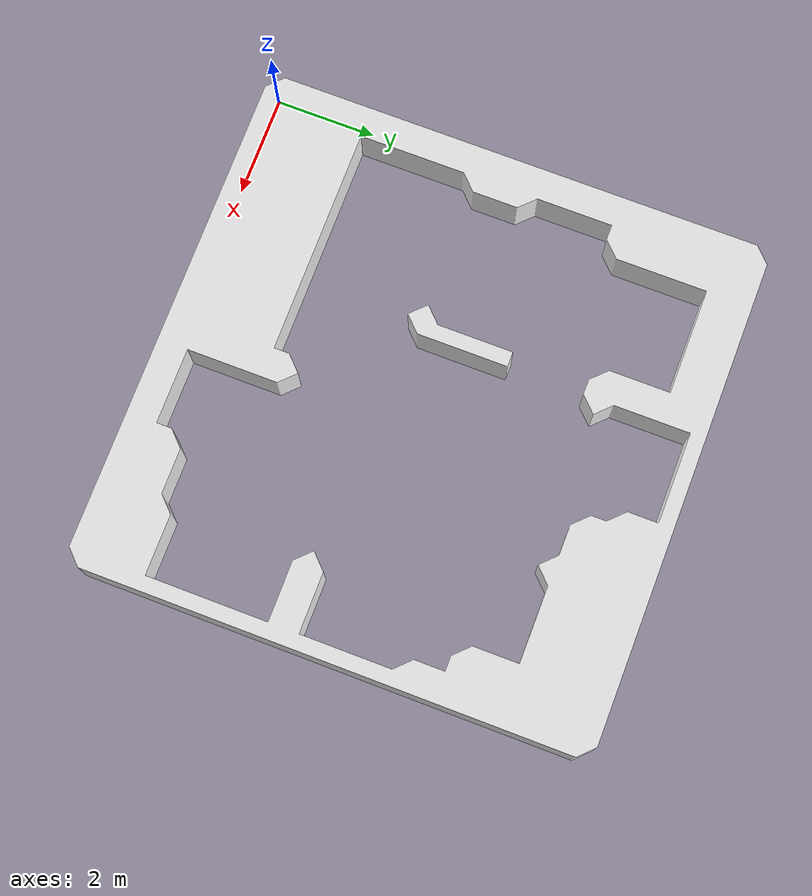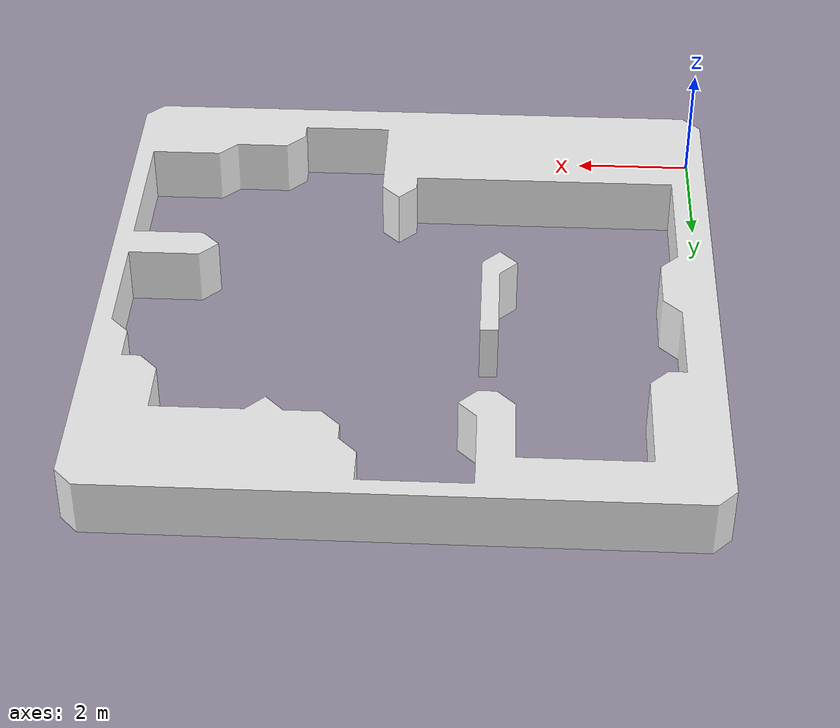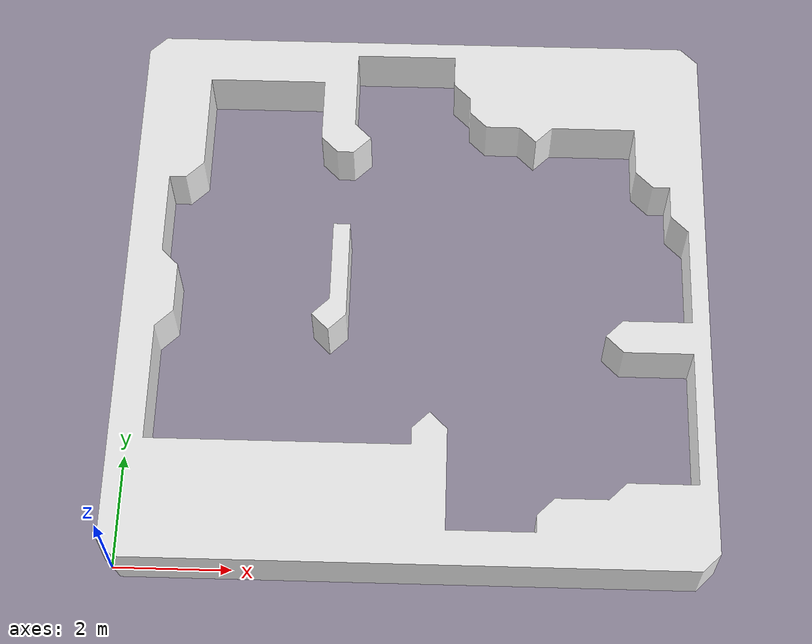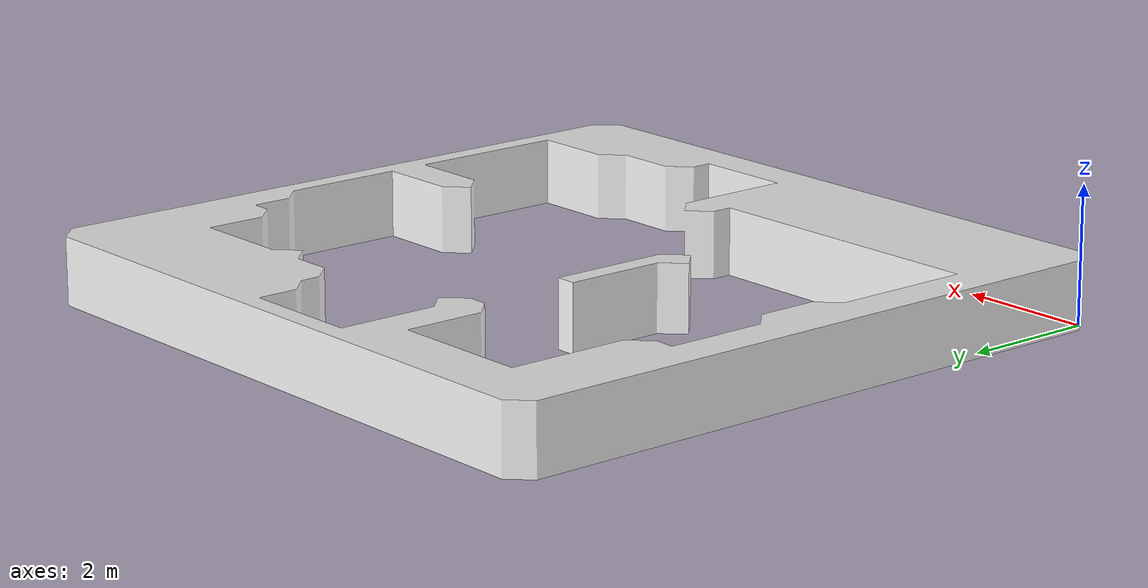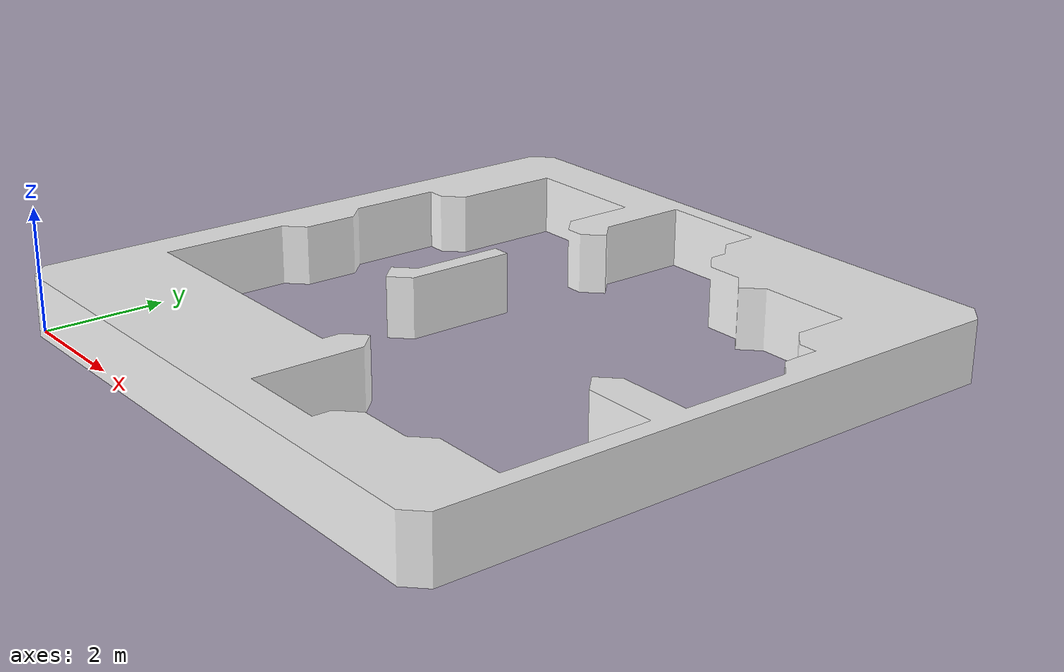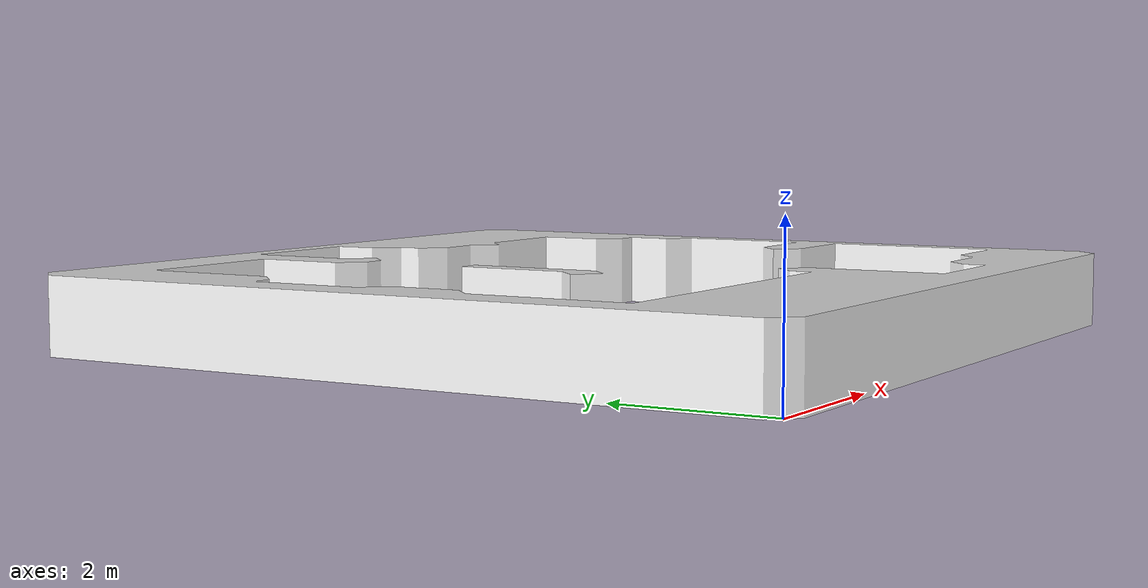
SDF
<?xml version="1.0" ?>
<sdf version="1.4">
  <model name="map32">
    <link name="link">
      <inertial>
        <mass>1</mass>
        <inertia>
          <ixx>0.0</ixx>
          <ixy>0.0</ixy>
          <ixz>0.0</ixz>
          <iyy>0.0</iyy>
          <iyz>0.0</iyz>
          <izz>0.0</izz>
        </inertia>
      </inertial>
      <collision name="collision">
        <pose>0.15 -0.15 0 0 0 1.5708</pose>
        <geometry>
          <mesh>
            <uri>/home/alessandro/vpn_project/VPN_Robotics/ros/src/cooperative_robotics/models/map32/map1.stl</uri>
          </mesh>
        </geometry>
      </collision>
      <visual name="visual">
        <pose>0.15 -0.15 0 0 0 1.5708</pose>
        <geometry>
          <mesh>
            <uri>/home/alessandro/vpn_project/VPN_Robotics/ros/src/cooperative_robotics/models/map32/map1.stl</uri>
          </mesh>
        </geometry>
        <material>
          <script>
            <uri>file://media/materials/scripts/gazebo.material</uri>
            <name>Gazebo/White</name>
          </script>
        </material>
      </visual>
    </link>
    <static>1</static>
  </model>
</sdf>
